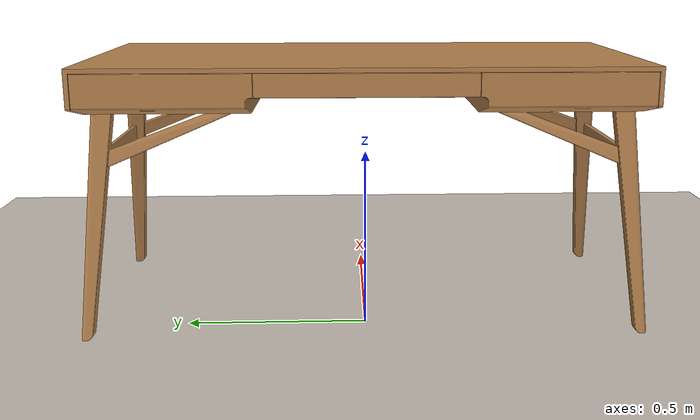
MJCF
<mujoco model="scene">
  <default>
    <default class="visual">
      <geom group="2" type="mesh" contype="0" conaffinity="0"/>
    </default>
    <default class="collision">
      <geom group="3" type="mesh"/>
    </default>
  </default>
  <asset>
    <texture type="2d" name="F02_Wood_R_XL_BaseColor" file="F02_Wood_R_XL_BaseColor.png"/>
    <material name="01_-_Default" texture="F02_Wood_R_XL_BaseColor" specular="1.0" shininess="0.199999995"/>
    <texture type="2d" name="dimian_BaseColor" file="dimian_BaseColor.png"/>
    <material name="plane" texture="dimian_BaseColor" specular="0.5" shininess="0.25"/>
    <mesh name="scene_0" file="scene_0.obj"/>
    <mesh name="scene_1" file="scene_1.obj"/>
  </asset>
  <worldbody>
    <geom condim="3" group="1" name="floor" type="plane" material="plane" size="5 5 5"/>
    <light pos="1.0 1.0 1.5" dir="-0.2 -0.2 -1" specular="0.3 0.3 0.3" directional="true" castshadow="false"/>
    <body name="table" quat="0.707 0 0 0.707">
      <geom name="table_visual" mesh="scene_1" material="01_-_Default" class="visual" pos="0 0 0" />
      <geom name="table_collision" mesh="scene_1" class="collision" friction="1 0.005 0.0001"/>
      <site pos="0 0 0.4" name="table_top" size="0.001 0.001 0.001" rgba="0 0 0 0"/>
    </body>
    <!-- front view -->
    <camera mode="fixed" name="frontview" pos="2 0 1.6" quat="0.56 0.43 0.43 0.56"/>
    <!-- bird view -->
    <camera mode="fixed" name="birdview" pos="-0.2 0 3.0" quat="0.7071 0 0 0.7071"/>
    <!-- agent view -->
    <camera mode="fixed" name="agentview" pos="0.5 0 1.35" quat="0.653 0.271 0.271 0.653"/>
    <!-- side view -->
    <camera mode="fixed" name="sideview" pos="-0.05651774593317116 1.2761224129427358 1.4879572214102434" quat="0.009905065491771751 0.006877963156909582 0.5912228352893879 0.806418094001364" />
  </worldbody>
</mujoco>
